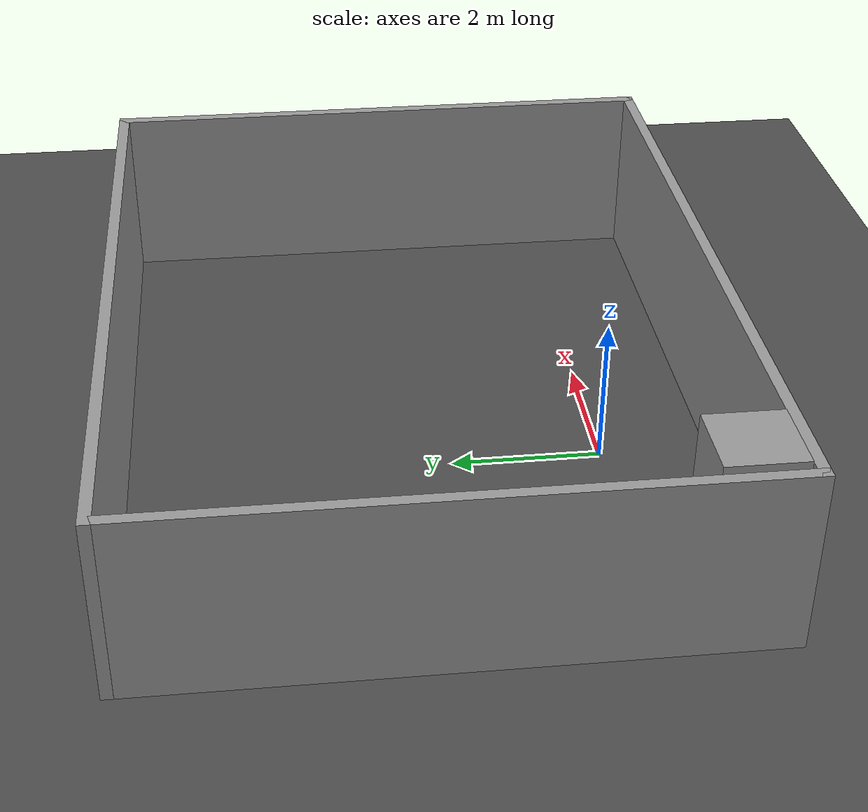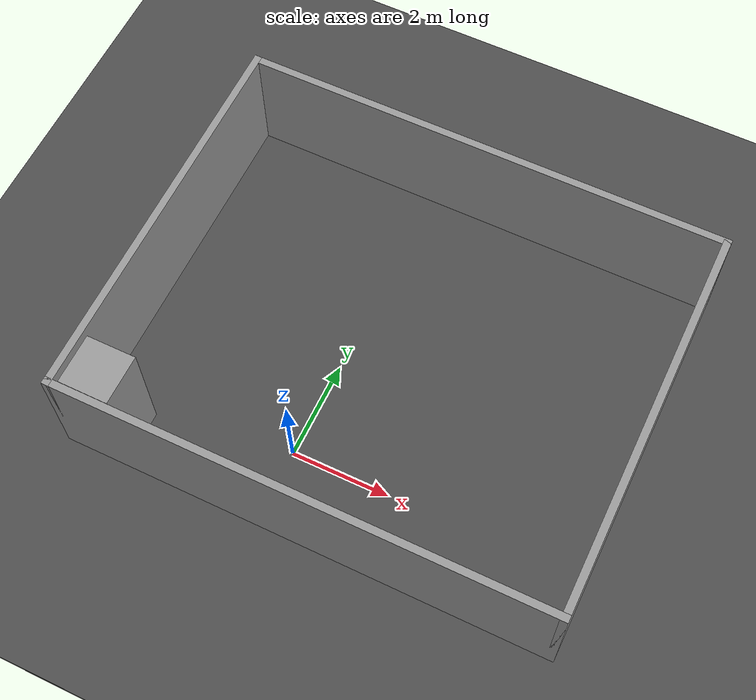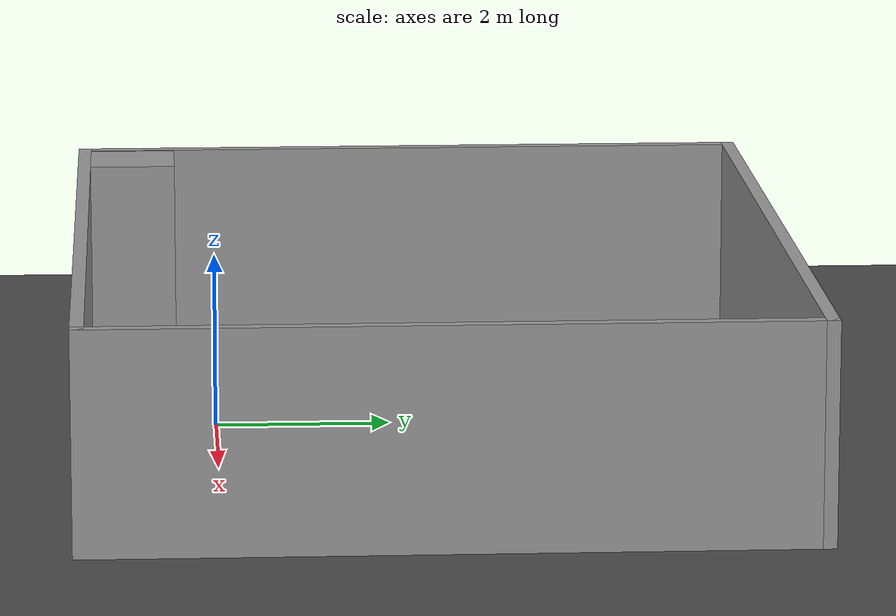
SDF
<sdf version="1.7">
 <world name="default">
  <light name="sun" type="directional">
   <pose>0 0 10 0 -0 0</pose>
   <diffuse>0.8 0.8 0.8 1</diffuse>
   <specular>0.2 0.2 0.2 1</specular>
   <attenuation>
    <range>1000</range>
    <constant>0.9</constant>
    <linear>0.01</linear>
    <quadratic>0.001</quadratic>
   </attenuation>
   <direction>-0.5 0.1 -0.9</direction>
   <spot><inner_angle>0</inner_angle><outer_angle>0</outer_angle><falloff>0</falloff></spot>
  </light>
  <model name="ground_plane">
   <static>1</static>
   <link name="link">
    <collision name="collision">
     <geometry><plane><normal>0 0 1</normal><size>100 100</size></plane></geometry>
     <surface><friction><ode><mu>100</mu><mu2>50</mu2></ode></friction></surface>
    </collision>
    <visual name="visual">
     <cast_shadows>0</cast_shadows>
     <geometry><plane><normal>0 0 1</normal><size>100 100</size></plane></geometry>
     <material>
      <script><uri>file://media/materials/scripts/gazebo.material</uri><name>Gazebo/Grey</name></script>
     </material>
    </visual>
   </link>
  </model>
  <model name="asphalt_plane">
   <static>1</static>
   <link name="link">
    <collision name="collision"><geometry><box><size>200 200 0.1</size></box></geometry></collision>
    <visual name="visual">
     <cast_shadows>0</cast_shadows>
     <geometry><box><size>200 200 0.1</size></box></geometry>
     <material>
      <script>
       <uri>model://asphalt_plane/materials/scripts</uri>
       <uri>model://asphalt_plane/materials/textures</uri>
       <name>vrc/asphalt</name>
      </script>
     </material>
    </visual>
   </link>
  </model>
  <physics name="default_physics" default="0" type="ode">
   <ode>
    <solver>
     <type>quick</type>
     <iters>10</iters>
     <sor>1.3</sor>
     <use_dynamic_moi_rescaling>0</use_dynamic_moi_rescaling>
    </solver>
    <constraints>
     <cfm>0</cfm>
     <erp>0.2</erp>
     <contact_max_correcting_vel>100</contact_max_correcting_vel>
     <contact_surface_layer>0.001</contact_surface_layer>
    </constraints>
   </ode>
   <max_step_size>0.004</max_step_size>
   <real_time_factor>1</real_time_factor>
   <real_time_update_rate>250</real_time_update_rate>
  </physics>
  <model name="walls">
   <pose>1.00638 2.41648 0 0 -0 0</pose>
   <link name="Wall_6">
    <collision name="Wall_6_Collision">
     <geometry><box><size>10 0.15 2.5</size></box></geometry>
     <pose>0 0 1.25 0 -0 0</pose>
    </collision>
    <visual name="Wall_6_Visual">
     <pose>0 0 1.25 0 -0 0</pose>
     <geometry><box><size>10 0.15 2.5</size></box></geometry>
     <material>
      <script><uri>file://media/materials/scripts/gazebo.material</uri><name>Gazebo/Grey</name></script>
      <ambient>1 1 1 1</ambient>
     </material>
     <meta><layer>0</layer></meta>
    </visual>
    <pose>0 -3.925 0 0 -0 0</pose>
   </link>
   <link name="Wall_7">
    <collision name="Wall_7_Collision">
     <geometry><box><size>8 0.15 2.5</size></box></geometry>
     <pose>0 0 1.25 0 -0 0</pose>
    </collision>
    <visual name="Wall_7_Visual">
     <pose>0 0 1.25 0 -0 0</pose>
     <geometry><box><size>8 0.15 2.5</size></box></geometry>
     <material>
      <script><uri>file://media/materials/scripts/gazebo.material</uri><name>Gazebo/Grey</name></script>
      <ambient>1 1 1 1</ambient>
     </material>
     <meta><layer>0</layer></meta>
    </visual>
    <pose>4.925 -0 0 0 -0 1.5708</pose>
   </link>
   <link name="Wall_8">
    <collision name="Wall_8_Collision">
     <geometry><box><size>10 0.15 2.5</size></box></geometry>
     <pose>0 0 1.25 0 -0 0</pose>
    </collision>
    <visual name="Wall_8_Visual">
     <pose>0 0 1.25 0 -0 0</pose>
     <geometry><box><size>10 0.15 2.5</size></box></geometry>
     <material>
      <script><uri>file://media/materials/scripts/gazebo.material</uri><name>Gazebo/Grey</name></script>
      <ambient>1 1 1 1</ambient>
     </material>
     <meta><layer>0</layer></meta>
    </visual>
    <pose>0 3.925 0 0 -0 3.14159</pose>
   </link>
   <link name="Wall_9">
    <collision name="Wall_9_Collision">
     <geometry><box><size>8 0.15 2.5</size></box></geometry>
     <pose>0 0 1.25 0 -0 0</pose>
    </collision>
    <visual name="Wall_9_Visual">
     <pose>0 0 1.25 0 -0 0</pose>
     <geometry><box><size>8 0.15 2.5</size></box></geometry>
     <material>
      <script><uri>file://media/materials/scripts/gazebo.material</uri><name>Gazebo/Grey</name></script>
      <ambient>1 1 1 1</ambient>
     </material>
     <meta><layer>0</layer></meta>
    </visual>
    <pose>-4.925 -0 0 0 -0 -1.5708</pose>
   </link>
   <static>1</static>
  </model>
  <light name="my_light" type="directional">
   <pose>0 0 30 0 -0 0</pose>
   <diffuse>0.5 0.5 0.5 1</diffuse>
   <specular>0.1 0.1 0.1 1</specular>
   <attenuation><range>200</range></attenuation>
   <direction>0 0 -1</direction>
   <cast_shadows>0</cast_shadows>
   <spot><inner_angle>0</inner_angle><outer_angle>0</outer_angle><falloff>0</falloff></spot>
  </light>
  <gravity>0 0 -9.8066</gravity>
  <magnetic_field>6e-06 2.3e-05 -4.2e-05</magnetic_field>
  <atmosphere type="adiabatic"/>
  <scene><ambient>0.4 0.4 0.4 1</ambient><background>0.7 0.7 0.7 1</background><shadows>1</shadows></scene>
  <spherical_coordinates>
   <surface_model>EARTH_WGS84</surface_model>
   <latitude_deg>0</latitude_deg>
   <longitude_deg>0</longitude_deg>
   <elevation>0</elevation>
   <heading_deg>0</heading_deg>
  </spherical_coordinates>
  <model name="unit_box">
   <pose>-3.23658 -0.933497 1.28181 1e-06 -1.4e-05 -5e-05</pose>
   <link name="link">
    <inertial>
     <mass>1</mass>
     <inertia>
      <ixx>0.166667</ixx>
      <ixy>0</ixy>
      <ixz>0</ixz>
      <iyy>0.166667</iyy>
      <iyz>0</iyz>
      <izz>0.166667</izz>
     </inertia>
    </inertial>
    <collision name="collision"><geometry><box><size>1 1 2.46365</size></box></geometry></collision>
    <visual name="visual">
     <geometry><box><size>1 1 2.46365</size></box></geometry>
     <material>
      <script><name>Gazebo/Grey</name><uri>file://media/materials/scripts/gazebo.material</uri></script>
     </material>
    </visual>
   </link>
  </model>
 </world>
</sdf>
